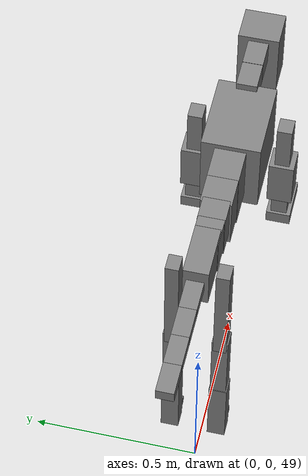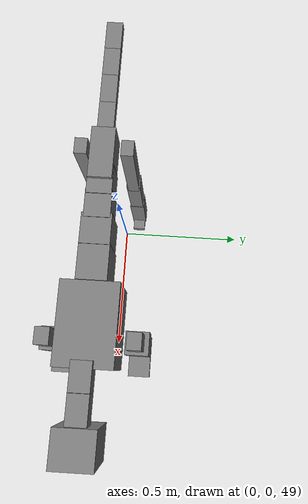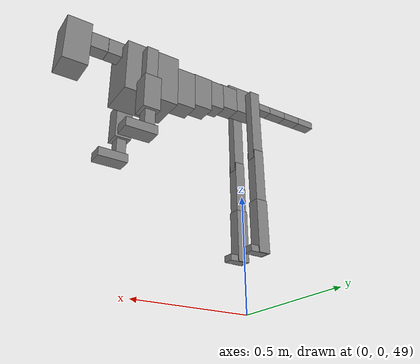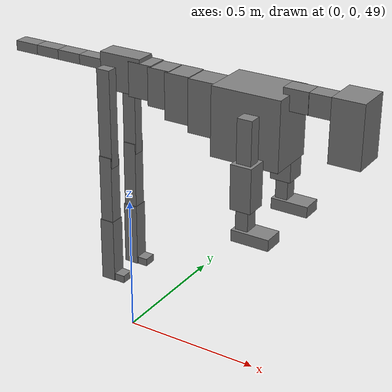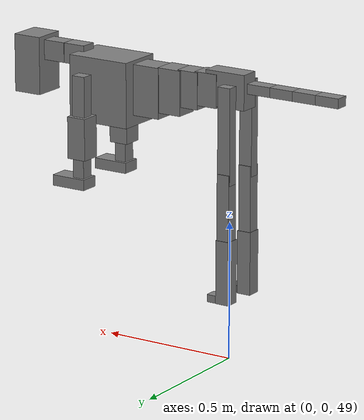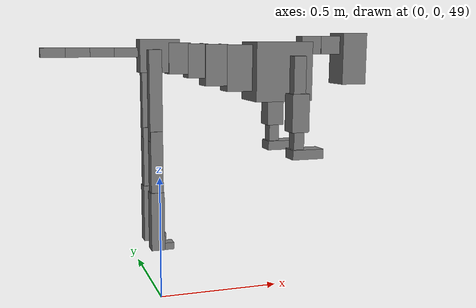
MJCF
<mujoco model="dog">

    <default>
        <joint armature="0.02" stiffness="1" damping="0.2" limited="true"/>
        <geom condim="3" friction="1 0.05 0.05" margin="0.01"/>
        <motor ctrllimited="true" ctrlrange="-1.0 1.0" forcelimited="true" gear="50"/>
    </default>

    <compiler inertiafromgeom="true" angle="radian"/>

    <option timestep="0.016" iterations="50" tolerance="1e-10" solver="Newton" jacobian="dense" cone="pyramidal"/>

    <size nconmax="20000" njmax="60000" nstack="5000000"/>
    <visual>
        <map force="0.1" zfar="30"/>
        <rgba haze="0.15 0.25 0.35 1"/>
        <quality shadowsize="2048"/>
        <global offwidth="800" offheight="800"/>
    </visual>

    <asset>
        <texture type="skybox" builtin="gradient" rgb1="0.3 0.5 0.7" rgb2="0 0 0" width="512" height="512"/>
        <texture name="texplane" type="2d" builtin="checker" rgb1=".2 .3 .4" rgb2=".1 0.15 0.2" width="512" height="512"
                 mark="cross" markrgb=".8 .8 .8"/>
        <texture name="texgeom" type="cube" builtin="flat" mark="cross" width="127" height="1278" rgb1="0.8 0.6 0.4"
                 rgb2="0.8 0.6 0.4" markrgb="1 1 1" random="0.01"/>

        <material name="matplane" reflectance="0.3" texture="texplane" texrepeat="1 1" texuniform="true"/>
        <material name="matgeom" texture="texgeom" texuniform="true" rgba="0.8 0.6 .4 1"/>
    </asset>

    <worldbody>
        <geom name="floor" pos="0 0 0" size="0 0 .25" type="plane" material="matplane" condim="3"/>

        <light directional="false" diffuse=".2 .2 .2" specular="0 0 0" pos="0 0 5" dir="0 0 -1" castshadow="false"/>
        <light mode="targetbodycom" target="torso" directional="false" diffuse=".8 .8 .8" specular="0.3 0.3 0.3"
               pos="0 0 4.0" dir="0 0 -1"/>

        <body name="root" pos="0 0 50">
            <freejoint name="root_1"/>
            <geom type="box" pos="0 0 -0.02" size="0.0774  0.0358  0.063" density="2030"/>

            <body name="spine1" pos="0.054 0 0">
                <joint name="spine1_y" axis="0 1 0" range="0 0.7" limited="true"/>
                <geom type="box" pos="0.02375 0 -0.03" size="0.04375  0.0375  0.05985" density="2030"/>

                <body name="spine2" pos="0.0612 0 0">
                    <joint name="spine2_y" axis="0 1 0" range="-0.15 0.15" limited="true"/>
                    <geom type="box" pos="0.03555  0  -0.04" size="0.04055  0.039  0.06615" density="2030"/>

                    <body name="spine3" pos="0.0730 0 0">
                        <joint name="spine3_y" axis="0 1 0" range="-0.15 0.15" limited="true"/>
                        <geom type="box" pos="0.03555  0  -0.057" size="0.04555  0.0445  0.081" density="2030"/>

                        <body name="spine4" pos="0.0780 0 0">
                            <joint name="spine4_y" axis="0 1 0" range="-0.15 0.15" limited="true"/>
                            <geom type="box" pos="0.05265  0  -0.07" size="0.05265  0.045  0.09135" density="2030"/>

                            <body name="torso" pos="0.1082 0 0">
                                <joint name="torso_y" axis="0 1 0" range="-0.15 0.15" limited="true"/>
                                <geom type="box" pos="0.11925  0  -0.085" size="0.11925  0.085  0.11745"
                                      density="2030"/>

                                <body name="neck1" pos="0.2160  0   0.0180">
                                    <joint name="neck1_y" axis="0 1 0" range="-1.2  -1" limited="true"/>
                                    <geom type="box" pos="0.0423  0  0" size="0.0423  0.03  0.036" density="2325"/>

                                    <body name="neck2" pos="0.0853  0  0">
                                        <joint name="neck2_y" axis="0 1 0" range="0.1  0" limited="true"/>
                                        <geom type="box" pos="0.0423  0  0" size="0.0423  0.03  0.036" density="2325"/>

                                        <body name="head" pos="0.0853  0  0">
                                            <joint name="head_y" axis="0 1 0" range="-0.3  -0.2" limited="true"/>
                                            <geom type="box" pos="0.0531  0  -0.055" size="0.0531  0.06  0.1044"
                                                  density="4030"/>

                                        </body>
                                    </body>
                                </body>

                                <body name="front_shoulder" pos="0.156  0   -0.0480">
                                    <joint name="front_shoulder_y" axis="0 1 0" range="-1 1.5" limited="true"/>
                                    <geom type="box" pos="0 0.13 -0.0599" size="0.0254  0.0217  0.0865" density="1158"/>
                                    <geom type="box" pos="0 -0.13 -0.0599" size="0.0254  0.0217  0.0865"
                                          density="1158"/>

                                    <body name="front_elbow" pos="0  0  -0.1198">
                                        <joint name="front_elbow_y" axis="0 1 0" range="-2 0" limited="true"/>
                                        <geom type="box" pos="0 0.13 -0.0755" size="0.0359  0.0367  0.0755"
                                              density="1081"/>
                                        <geom type="box" pos="0 -0.13 -0.0755" size="0.0359  0.0367  0.0755"
                                              density="1081"/>

                                        <body name="front_wrist" pos="0  0  -0.1509">
                                            <joint name="front_wrist_y" axis="0 1 0" range="-0.2 0" limited="true"/>
                                            <geom type="box" pos="0 0.13 -0.0424" size="0.0216  0.0240  0.0556"
                                                  density="1664"/>
                                            <geom type="box" pos="0 -0.13 -0.0424" size="0.0216  0.0240  0.0556"
                                                  density="1664"/>

                                            <body name="front_finger_end" pos="0  0  -0.0849">
                                                <joint name="front_finger_y" axis="0 1 0" range="-0.4 1"
                                                       limited="true"/>
                                                <geom type="box" pos="0.0357  0.13  -0.0044"
                                                      size="0.0655  0.0357  0.0194" density="1515"/>
                                                <geom type="box" pos="0.0357  -0.13  -0.0044"
                                                      size="0.0655  0.0357  0.0194" density="1515"/>

                                            </body>

                                        </body>
                                    </body>
                                </body>

                            </body>
                        </body>
                    </body>
                </body>
            </body>

            <body name="back_hip" pos="-0.03 0 -0.018">
                <joint name="back_hip_y" axis="0 1 0" range="-1.5 0.3" limited="true"/>
                <geom type="box" pos="0 0.07 -0.1502" size="0.0246  0.0193  0.1730" density="1154"/>
                <geom type="box" pos="0 -0.07 -0.1502" size="0.0246  0.0193  0.1730" density="1154"/>

                <body name="back_knee" pos="0  0  -0.3004">
                    <joint name="back_knee_y" axis="0 1 0" range="0 2.8" limited="true"/>
                    <geom type="box" pos="0 0.07 -0.1164" size="0.0236  0.0232  0.1320" density="1227"/>
                    <geom type="box" pos="0 -0.07 -0.1164" size="0.0236  0.0232  0.1320" density="1227"/>

                    <body name="back_ankle" pos="0  0  -0.2328">
                        <joint name="back_ankle_y" axis="0 1 0" range="-2.2 0" limited="true"/>
                        <geom type="box" pos="0 0.07 -0.1034" size="0.0261  0.0261  0.1146" density="1284"/>
                        <geom type="box" pos="0 -0.07 -0.1034" size="0.0261  0.0261  0.1146" density="1284"/>

                        <body name="back_toe_end" pos="0  0  -0.2067">
                            <joint name="back_toe_y" axis="0 1 0" range="-0.4 1" limited="true"/>
                            <geom type="box" pos="0.0224  0.07  0.0015" size="0.0410  0.0224  0.0135" density="1515"/>
                            <geom type="box" pos="0.0224  -0.07  0.0015" size="0.0410  0.0224  0.0135" density="1515"/>

                        </body>
                    </body>
                </body>
            </body>

            <body name="tail1" pos="-0.074 0 -0.006">
                <joint name="tail1_y" axis="0 1 0" range="-0.2 0.2" limited="true"/>
                <geom type="box" pos="-0.0536  0  0" size="0.045  0.025  0.0175" density="1587"/>

                <body name="tail2" pos="-0.09 0 0">
                    <joint name="tail2_y" axis="0 1 0" range="-0.2 0.2" limited="true"/>
                    <geom type="box" pos="-0.0536  0  0" size="0.045  0.025  0.0175" density="1587"/>

                    <body name="tail3" pos="-0.09 0 0">
                        <joint name="tail3_y" axis="0 1 0" range="-0.2 0.2" limited="true"/>
                        <geom type="box" pos="-0.0536  0  0" size="0.045  0.025  0.0175" density="1587"/>

                        <body name="tail4" pos="-0.09 0 0">
                            <joint name="tail4_y" axis="0 1 0" range="-0.2 0.2" limited="true"/>
                            <geom type="box" pos="-0.0536  0  0" size="0.045  0.025  0.0175" density="1587"/>

                        </body>
                    </body>
                </body>
            </body>
        </body>
    </worldbody>

    <actuator>
        <motor joint="spine1_y" forcerange="-150 150     "/>
        <motor joint="spine2_y" forcerange="-150 150     "/>
        <motor joint="spine3_y" forcerange="-150 150     "/>
        <motor joint="spine4_y" forcerange="-150 150     "/>
        <motor joint="torso_y" forcerange="-150 150     "/>
        <motor joint="neck1_y" forcerange="-100 100       "/>
        <motor joint="neck2_y" forcerange="-100 100       "/>
        <motor joint="head_y" forcerange="-150 150       "/>
        <motor joint="front_shoulder_y" forcerange="-111.47 133.51"/>
        <motor joint="front_elbow_y" forcerange="-184.93 182.22"/>
        <motor joint="front_wrist_y" forcerange="-75.50 116.52"/>
        <motor joint="front_finger_y" forcerange="-94.11 56.31"/>
        <motor joint="back_hip_y" forcerange="-237.71 219.68"/>
        <motor joint="back_knee_y" forcerange="-293.11 244.60"/>
        <motor joint="back_angle_y" forcerange="-111.33 206.79"/>
        <motor joint="back_toe_y" forcerange="-47.15 51.97"/>
        <motor joint="tail1_y" forcerange="-50 50     "/>
        <motor joint="tail2_y" forcerange="-50 50     "/>
        <motor joint="tail3_y" forcerange="-50 50     "/>
        <motor joint="tail4_y" forcerange="-50 50     "/>
    </actuator>
</mujoco>
